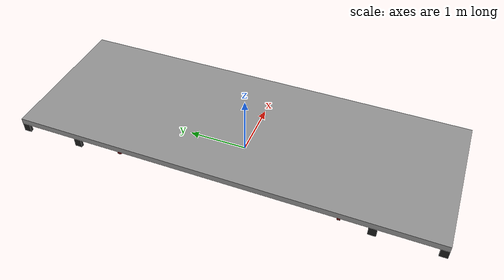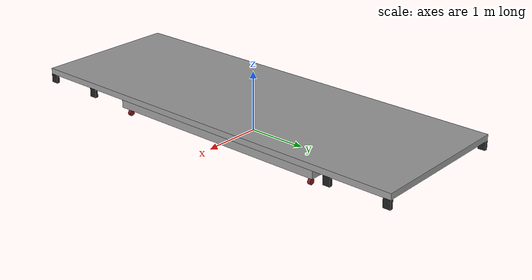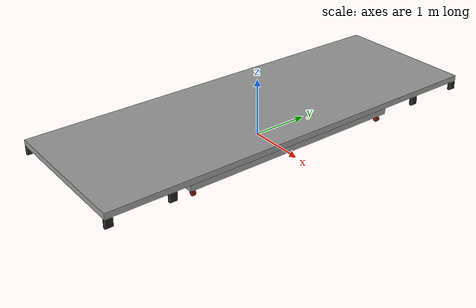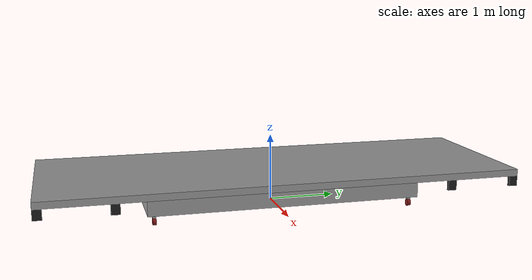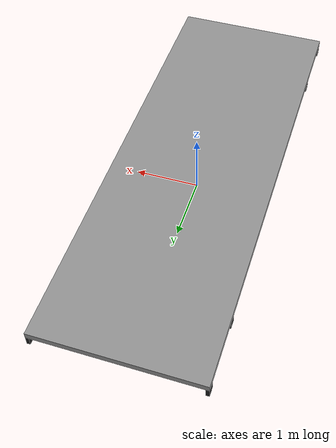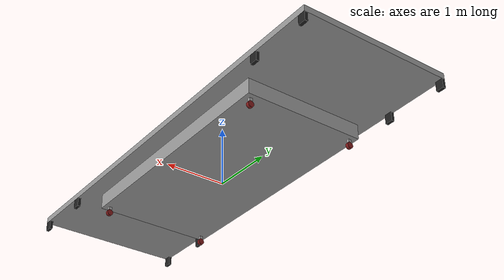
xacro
<?xml version="1.0"?>
<robot name="arm" xmlns:xacro="http://www.ros.org/wiki/xacro">
    <xacro:include filename="$(find agv_description)/xacro/agv_base.urdf.xacro" />
    <xacro:include filename="$(find agv_description)/xacro/sensors/lidar_gazebo.xacro" />
    <xacro:include filename="$(find agv_description)/xacro/sensors/lidar_gazebo_2.xacro" />
    <xacro:include filename="$(find agv_description)/xacro/goods/goods_gazebo.xacro" />

    <!-- property for lidar -->

    <xacro:property name="lidar_offset_x" value="-0.9" />
    <xacro:property name="lidar_offset_y" value="0.0" />
    <xacro:property name="lidar_offset_z" value="0.15" />
    <agv_base/>

    <!-- lidar -->
    <joint name="lidar_joint" type="fixed">
        <origin xyz="${lidar_offset_x} ${lidar_offset_y} ${lidar_offset_z}" rpy="0 0 0" />
        <parent link="base_link"/>
        <child link="laser_link"/>
    </joint>

    <xacro:rplidar prefix="laser"/>

    <!-- property for lidar -->
    <xacro:property name="lidar_offset_x_2" value="0.9" />
    <xacro:property name="lidar_offset_y_2" value="0.0" />
    <xacro:property name="lidar_offset_z_2" value="0.15" />

    <!-- lidar2 -->
    <joint name="lidar_joint_2" type="fixed">
        <origin xyz="${lidar_offset_x_2} ${lidar_offset_y_2} ${lidar_offset_z_2}" rpy="0 0 0" />
        <parent link="base_link"/>
        <child link="laser_2_link"/>
    </joint>

    <xacro:rplidar_2 prefix="laser_2"/>

    <!-- property for goods -->
    <xacro:property name="goods_offset_x" value="0" />
    <xacro:property name="goods_offset_y" value="0" />
    <xacro:property name="goods_offset_z" value="0.215" />

    <!-- goods -->
    <joint name="goods_joint" type="fixed">
        <origin xyz="${goods_offset_x} ${goods_offset_y} ${goods_offset_z}" rpy="0 0 0" />
        <parent link="base_link"/>
        <child link="7m_goods_link"/>
    </joint>
    <put_7m_goods/>

</robot>

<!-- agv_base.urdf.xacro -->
<robot name="agvs" xmlns:xacro="http://www.ros.org/wiki/xacro">
    <xacro:include filename="$(find agv_description)/xacro/agv_base.gazebo.xacro" />

    <!-- PROPERTY LIST -->
    <xacro:property name="M_PI" value="3.14159265359"/>
    <xacro:property name="base_length" value="2"/>
    <xacro:property name="base_width" value="4"/>
    <xacro:property name="base_height" value="0.25"/>
    <xacro:property name="base_mass" value="250.0"/>

    <xacro:property name="imu_size" value="0.001"/>
    <xacro:property name="imu_height" value="0.001"/>

    <xacro:property name="motor_length" value="0.05"/>
    <xacro:property name="motor_width" value="0.05"/>
    <xacro:property name="motor_height" value="0.05"/>
    <xacro:property name="motor_mass" value="20.0"/>

    <xacro:property name="wheel_radius" value="0.05"/>
    <xacro:property name="wheel_width" value="0.05"/>
    <xacro:property name="wheel_mass" value="10.0" />

    <xacro:property name="wheel_joint_damping" value="0.0" />
    <xacro:property name="wheel_joint_friction" value="0.0" />
    <xacro:property name="wheel_joint_effort_limit" value="10.0" />
    <xacro:property name="wheel_joint_velocity_limit" value="20.0" />
    <xacro:property name="wheel_mechanical_reduction" value="1.0" />

    <xacro:property name="steer_joint_damping" value="0.0" />
    <xacro:property name="steer_joint_friction" value="0.0" />
    <xacro:property name="steer_joint_effort_limit" value="10.0" />
    <xacro:property name="steer_joint_velocity_limit" value="10.0" />
    <xacro:property name="motor_wheel_mechanical_reduction" value="1.0" />

    <!-- Macro for whell -->
    <xacro:macro name="wheel" params="prefix x y z">

        <link name="${prefix}_motor_wheel_link">
            <visual>
                <origin xyz="0 0 0" rpy="0 0 0" />
                <geometry>
                    <box size="${motor_length} ${motor_width} ${motor_height}" />
                </geometry>
            </visual>

            <gazebo reference="${prefix}_motor_wheel_link">
                <material>Gazebo/Gray</material>
            </gazebo>

            <collision>
                <origin xyz="0 0 0" rpy="0 0 0" />
                <geometry>
                    <box size="${motor_length} ${motor_width} ${motor_height}" />
                </geometry>
            </collision>

            <xacro:box_inertial mass="${motor_mass}" x="${motor_length}" y="${motor_width}" z="${motor_height}">
                <origin xyz="0 0 0" rpy="0 0 0" />
            </xacro:box_inertial>

        </link>

        <joint name="${prefix}_motor_wheel_joint" type="continuous">
            <origin xyz="${x} ${y} ${z}" rpy="0 0 0"/>
            <parent link="base_link"/>
            <child link="${prefix}_motor_wheel_link"/>
            <axis xyz="0 0 1"/>
            <limit effort="${steer_joint_effort_limit}"
                   velocity="${steer_joint_velocity_limit}"
                   lower="-1.5708" upper="1.5708"/>
            <joint_properties damping="${steer_joint_damping}" friction="{steer_joint_friction}"/>
        </joint>

        <transmission name="${prefix}_motor_wheel_trans">
            <type>transmission_interface/SimpleTransmission</type>
            <joint name="${prefix}_motor_wheel_joint">
                <hardwareInterface>hardware_interface/EffortJointInterface</hardwareInterface>
            </joint>
            <actuator name="${prefix}_motor_joint_motor">
                <hardwareInterface>hardware_interface/EffortJointInterface</hardwareInterface>
                <mechanicalReduction>${motor_wheel_mechanical_reduction}</mechanicalReduction>
            </actuator>
        </transmission>

        <link name="${prefix}_wheel_link">
            <visual>
                <origin xyz="0 0 0" rpy="${0.5 * M_PI} 0 0" />
                <geometry>
                    <cylinder length="${wheel_width}" radius="${wheel_radius}"/>
                </geometry>
	            <material name="red">
	                <color rgba="0.5 0.1 0.1 1"/>
                </material>
            </visual>

            <collision>
                <origin xyz="0 0 0" rpy="${0.5 * M_PI} 0 0" />
                <geometry>
                    <cylinder length="${wheel_width}" radius="${wheel_radius}"/>
                </geometry>
                <friction>
                    <ode>
                        <mu>1.0</mu>
                        <mu2>0.0</mu2>
                        <slip1>1.0</slip1>
                        <slip2>1.0</slip2>
                    </ode>
                </friction>
            </collision>

            <xacro:cylinder_inertial mass="${wheel_mass}" radius="${wheel_radius}" length="${wheel_width}">
                <origin xyz="0 0 0" rpy="${0.5 * M_PI} 0 0" />
            </xacro:cylinder_inertial>

        </link>

        <joint name="${prefix}_wheel_joint" type="continuous">
            <origin xyz="0 0 -0.075" rpy="0 0 0"/>
            <parent link="${prefix}_motor_wheel_link"/>
            <child link="${prefix}_wheel_link"/>
            <axis xyz="0 1 0"/>
            <limit effort="${wheel_joint_effort_limit}" velocity="${wheel_joint_velocity_limit}"/>
            <joint_properties damping="${wheel_joint_damping}" friction="{wheel_joint_friction}"/>
        </joint>

    </xacro:macro>

    <xacro:macro name="cylinder_inertial" params="radius length mass *origin">
        <inertial>
        <mass value="${mass}" />
        <xacro:insert_block name="origin" />
        <inertia ixx="${0.0833333 * mass * (3 * radius * radius + length * length)}" ixy="0.0" ixz="0.0"
            iyy="${0.0833333 * mass * (3 * radius * radius + length * length)}" iyz="0.0"
            izz="${0.5 * mass * radius * radius}" />
        </inertial>

    </xacro:macro>

    <xacro:macro name="box_inertial" params="x y z mass *origin">
        <inertial>
        <mass value="${mass}" />
        <xacro:insert_block name="origin" />
        <inertia ixx="${0.0833333 * mass * (y*y + z*z)}" ixy="0.0" ixz="0.0"
            iyy="${0.0833333 * mass * (x*x + z*z)}" iyz="0.0"
            izz="${0.0833333 * mass * (x*x + y*y)}" />
        </inertial>

    </xacro:macro>

    <!-- Macro for agv_base -->
    <xacro:macro name="agv_base">

        <!-- base_footprint is a fictitious link(frame) that is on the ground right below base_link
             origin, navigation stack depends on this frame -->
        <link name="base_footprint">
            <visual>
                <origin xyz="0 0 0" rpy="0 0 0" />
                <geometry>
                    <box size="0.001 0.001 0.001" />
                </geometry>
            </visual>
        </link>

        <joint name="base_joint" type="fixed">
            <origin xyz="0 0 0.275" rpy="0 0 0" />
            <parent link="base_footprint"/>
            <child link="base_link" />
        </joint>

        <link name="base_link">

            <visual>
                <origin xyz="0 0 0" rpy="0 0 0" />
                <geometry>
                    <box size="${base_length} ${base_width} ${base_height}"/>
                </geometry>
            </visual>

            <collision>
                <origin xyz="0 0 0" rpy="0 0 0 " />
                <geometry>
                    <box size="${base_length} ${base_width} ${base_height}"/>
                </geometry>
            </collision>

            <xacro:box_inertial mass="${base_mass}" x="${base_length}" y="${base_width}" z="${base_height}">
                <origin xyz="0 0 0" rpy="0 0 0" />
            </xacro:box_inertial>

        </link>

        <gazebo reference="base_link">
            <material>Gazebo/Gray</material>
        </gazebo>

        <wheel prefix="front_right" x=" 0.9"  y=" 1.9" z="-0.15"/>
        <wheel prefix="front_left"  x=" 0.9"  y="-1.9" z="-0.15"/>
        <wheel prefix="back_right"  x="-0.9"  y=" 1.9" z="-0.15"/>
        <wheel prefix="back_left"   x="-0.9"  y="-1.9" z="-0.15"/>

    </xacro:macro>
</robot>

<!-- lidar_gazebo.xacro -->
<robot name="laser" xmlns:xacro="http://www.ros.org/wiki/xacro">

    <!-- PROPERTY LIST -->
    <xacro:property name="M_PI" value="3.14159265359"/>

    <xacro:macro name="rplidar" params="prefix:=laser">

        <!-- Create laser reference frame -->
        <link name="${prefix}_link">
            <visual>
                <origin xyz=" 0 0 0 " rpy="0 0 0" />
                <geometry>
                    <cylinder length="0.05" radius="0.05"/>
                </geometry>
                <material name="black"/>
            </visual>

            <collision>
                <origin xyz="0.0 0.0 0.0" rpy="0 0 0" />
                <geometry>
                    <cylinder length="0.06" radius="0.05"/>
                </geometry>
            </collision>

            <inertial>
                <mass value="0.1" />
                <origin xyz="0 0 0" />
                <inertia ixx="0.0" ixy="0.0" ixz="0.0"
                         iyy="0.0" iyz="0.0"
                         izz="0.0" />
            </inertial>
        </link>

        <gazebo reference="${prefix}_link">
            <material>Gazebo/Black</material>
        </gazebo>

        <gazebo reference="${prefix}_link">
            <sensor type="ray" name="rplidar">
                <pose>0 0 0 0 0 0</pose>
                <visualize>false</visualize>
                <update_rate>5</update_rate>
                <ray>
                    <scan>
                      <horizontal>
                        <samples>1800</samples>
                        <resolution>1</resolution>
                        <min_angle>${-M_PI}</min_angle>
                        <max_angle>${M_PI}</max_angle>
                      </horizontal>
                    </scan>
                    <range>
                      <min>0.10</min>
                      <max>100</max>
                      <resolution>0.01</resolution>
                    </range>
                    <noise>
                      <type>gaussian</type>
                      <mean>0.0</mean>
                      <stddev>0.01</stddev>
                    </noise>
                </ray>
                <plugin name="gazebo_rplidar" filename="libgazebo_ros_laser.so">
                    <topicName>scan</topicName>
                    <frameName>laser_link</frameName>
                </plugin>
            </sensor>
        </gazebo>

    </xacro:macro>
</robot>

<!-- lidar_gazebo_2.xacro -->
<robot name="laser_2" xmlns:xacro="http://www.ros.org/wiki/xacro">

    <!-- PROPERTY LIST -->
    <xacro:property name="M_PI" value="3.14159265359"/>

    <xacro:macro name="rplidar_2" params="prefix:=laser">

        <!-- Create laser reference frame -->
        <link name="${prefix}_link">
            <visual>
                <origin xyz=" 0 0 0 " rpy="0 0 0" />
                <geometry>
                    <cylinder length="0.05" radius="0.05"/>
                </geometry>
                <material name="black"/>
            </visual>

            <collision>
                <origin xyz="0.0 0.0 0.0" rpy="0 0 0" />
                <geometry>
                    <cylinder length="0.06" radius="0.05"/>
                </geometry>
            </collision>

            <inertial>
                <mass value="0.1" />
                <origin xyz="0 0 0" />
                <inertia ixx="0.0" ixy="0.0" ixz="0.0"
                         iyy="0.0" iyz="0.0"
                         izz="0.0" />
            </inertial>
        </link>

        <gazebo reference="${prefix}_link">
            <material>Gazebo/Black</material>
        </gazebo>

        <gazebo reference="${prefix}_link">
            <sensor type="ray" name="rplidar_2">
                <pose>0 0 0 0 0 0</pose>
                <visualize>false</visualize>
                <update_rate>5</update_rate>
                <ray>
                    <scan>
                      <horizontal>
                        <samples>1800</samples>
                        <resolution>1</resolution>
                        <min_angle>${-M_PI}</min_angle>
                        <max_angle>${M_PI}</max_angle>
                      </horizontal>
                    </scan>
                    <range>
                      <min>0.10</min>
                      <max>100</max>
                      <resolution>0.01</resolution>
                    </range>
                    <noise>
                      <type>gaussian</type>
                      <mean>0.0</mean>
                      <stddev>0.01</stddev>
                    </noise>
                </ray>
                <plugin name="gazebo_rplidar_2" filename="libgazebo_ros_laser.so">
                    <topicName>my_scan_2</topicName>
                    <frameName>laser_2_link</frameName>
                </plugin>
            </sensor>
        </gazebo>

    </xacro:macro>
</robot>

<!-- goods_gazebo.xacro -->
<robot name="goods" xmlns:xacro="http://www.ros.org/wiki/xacro">

    <!-- PROPERTY LIST -->
    <xacro:property name="M_PI" value="3.14159265359"/>

    <xacro:property name="my_7m_goods_length" value="2.5"/>
    <xacro:property name="my_7m_goods_width" value="7.0"/>
    <xacro:property name="my_7m_goods_height" value="0.1"/>
    <xacro:property name="my_7m_goods_mass" value="500.0"/>

    <xacro:property name="legs_length" value="0.05"/>
    <xacro:property name="legs_width" value="0.125"/>
    <xacro:property name="legs_height" value="0.15"/>
    <xacro:property name="legs_mass" value="10.0"/>

    <xacro:property name="pillar_radius" value="0.05"/>
    <xacro:property name="pillar_width" value="0.05"/>
    <xacro:property name="pillar_mass" value="10.0" />

    <xacro:macro name="cylinder_inertial" params="radius length mass *origin">
        <inertial>
        <mass value="${mass}" />
        <xacro:insert_block name="origin" />
        <inertia ixx="${0.0833333 * mass * (3 * radius * radius + length * length)}" ixy="0.0" ixz="0.0"
            iyy="${0.0833333 * mass * (3 * radius * radius + length * length)}" iyz="0.0"
            izz="${0.5 * mass * radius * radius}" />
        </inertial>

    </xacro:macro>

    <xacro:macro name="box_inertial" params="x y z mass *origin">
        <inertial>
        <mass value="${mass}" />
        <xacro:insert_block name="origin" />
        <inertia ixx="${0.0833333 * mass * (y*y + z*z)}" ixy="0.0" ixz="0.0"
            iyy="${0.0833333 * mass * (x*x + z*z)}" iyz="0.0"
            izz="${0.0833333 * mass * (x*x + y*y)}" />
        </inertial>

    </xacro:macro>

    <xacro:macro name="legs" params="prefix x y z">
        <!-- Create laser reference frame -->
        <link name="${prefix}_leg_link">
            <visual>
                <origin xyz=" 0 0 0 " rpy="0 0 0" />
                <geometry>
                    <box size="${legs_length} ${legs_width} ${legs_height}" />
                </geometry>
                <material name="black"/>
            </visual>

            <collision>
                <origin xyz=" 0 0 0 " rpy="0 0 0" />
                <geometry>
                    <box size="${legs_length} ${legs_width} ${legs_height}" />
                </geometry>
            </collision>

            <xacro:box_inertial mass="${legs_mass}" x="${legs_length}" y="${legs_width}" z="${legs_height}">
                <origin xyz="0 0 0" rpy="0 0 0" />
            </xacro:box_inertial>

        </link>

        <joint name="${prefix}_leg_joint" type="fixed">
            <origin xyz="${x} ${y} ${z}" rpy="0 0 0"/>
            <parent link="7m_goods_link"/>
            <child link="${prefix}_leg_link"/>
        </joint>

        <gazebo reference="${prefix}_leg_link">
            <material>Gazebo/Black</material>
        </gazebo>

    </xacro:macro>

    <xacro:macro name="pillar" params="prefix x y z">
        <!-- Create laser reference frame -->
        <link name="${prefix}_pillar_link">
            <visual>
                <origin xyz=" 0 0 0 " rpy="0 0 0" />
                <geometry>
                    <cylinder length="${pillar_width}" radius="${pillar_radius}"/>
                </geometry>
                <material name="black"/>
            </visual>

            <collision>
                <origin xyz=" 0 0 0 " rpy="0 0 0" />
                <geometry>
                    <cylinder length="${pillar_width}" radius="${pillar_radius}"/>
                </geometry>
            </collision>

            <xacro:cylinder_inertial mass="${pillar_mass}" radius="${pillar_radius}" length="${pillar_width}">
                <origin xyz="0 0 0" rpy="0 0 0" />
            </xacro:cylinder_inertial>

        </link>

        <joint name="${prefix}_pillar_joint" type="fixed">
            <origin xyz="${x} ${y} ${z}" rpy="0 0 0"/>
            <parent link="7m_goods_link"/>
            <child link="${prefix}_pillar_link"/>
        </joint>

        <gazebo reference="${prefix}_pillar_link">
            <material>Gazebo/Black</material>
        </gazebo>

    </xacro:macro>

    <xacro:macro name="put_7m_goods">
        <!-- Create laser reference frame -->
        <link name="7m_goods_link">
            <visual>
                <origin xyz=" 0 0 0 " rpy="0 0 0" />
                <geometry>
                    <box size="${my_7m_goods_length} ${my_7m_goods_width} ${my_7m_goods_height}" />
                </geometry>
                <material name="gray"/>
            </visual>

            <collision>
                <origin xyz=" 0 0 0 " rpy="0 0 0" />
                <geometry>
                    <box size="${my_7m_goods_length} ${my_7m_goods_width} ${my_7m_goods_height}" />
                </geometry>
            </collision>

            <xacro:box_inertial mass="${my_7m_goods_mass}" x="${my_7m_goods_length}" y="${my_7m_goods_width}" z="${my_7m_goods_height}">
                <origin xyz="0 0 0" rpy="0 0 0" />
            </xacro:box_inertial>

        </link>

        <gazebo reference="7m_goods_link">
            <material>Gazebo/white</material>
        </gazebo>

        <legs prefix="front_right" x=" 1.225"  y=" 3.4375" z="-0.125"/>
        <legs prefix="front_left"  x=" 1.225"  y="-3.4375" z="-0.125"/>
        <legs prefix="back_right"  x="-1.225"  y=" 3.4375" z="-0.125"/>
        <legs prefix="back_left"   x="-1.225"  y="-3.4375" z="-0.125"/>
        <legs prefix="front_right_2" x=" 1.225"  y=" 2.4375" z="-0.125"/>
        <legs prefix="front_left_2"  x=" 1.225"  y="-2.4375" z="-0.125"/>
        <legs prefix="back_right_2"  x="-1.225"  y=" 2.4375" z="-0.125"/>
        <legs prefix="back_left_2"   x="-1.225"  y="-2.4375" z="-0.125"/>
        <pillar prefix="front_right_2" x=" 0.9"  y=" 1.9" z="-0.075"/>
        <pillar prefix="front_left_2"  x=" 0.9"  y="-1.9" z="-0.075"/>
        <pillar prefix="back_right_2"  x="-0.9"  y=" 1.9" z="-0.075"/>
        <pillar prefix="back_left_2"   x="-0.9"  y="-1.9" z="-0.075"/>

    </xacro:macro>
</robot>
